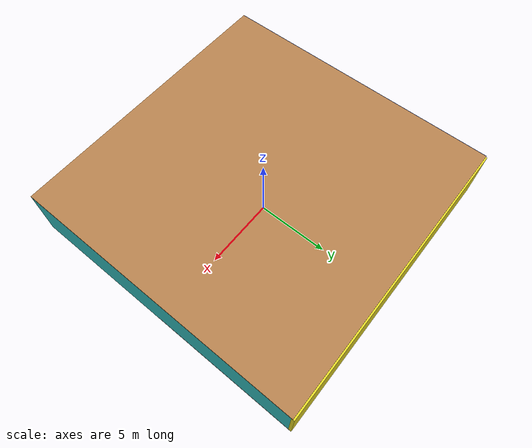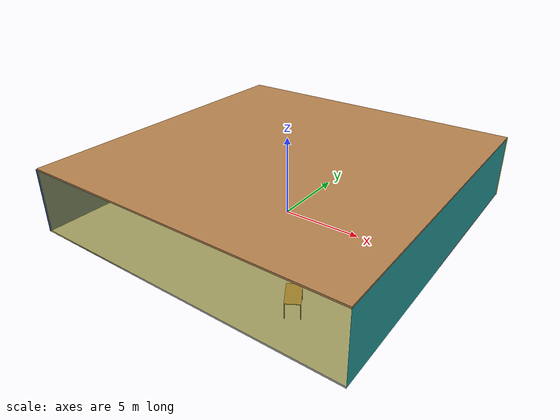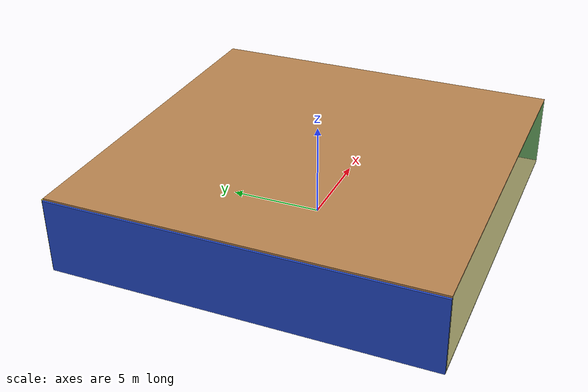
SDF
<sdf version="1.4">
 <world name="default">
  <physics type="ode">
   <max_step_size>0.001</max_step_size>
   <real_time_factor>1</real_time_factor>
   <real_time_update_rate>1000</real_time_update_rate>
   <gravity>0 0 -9.8</gravity>
  </physics>
  <scene><ambient>0.4 0.4 0.4 1</ambient><background>0.7 0.7 0.7 1</background><shadows>1</shadows></scene>
  <model name="Surrounding">
   <static>1</static>
   <link name="Ceiling">
    <collision name="Ceiling_Collision"><geometry><box><size>20 20 0.1</size></box></geometry></collision>
    <visual name="Ceiling_Visual">
     <geometry><box><size>20 20 0.1</size></box></geometry>
     <material>
      <script><uri>file://media/materials/scripts/gazebo.material</uri><name>Gazebo/WoodPallet</name></script>
     </material>
    </visual>
    <pose>0 0 4.05 0 0 0</pose>
   </link>
   <link name="Wall_South">
    <collision name="Wall_South_Collision">
     <geometry><box><size>20 0 4</size></box></geometry>
     <pose>0 0 2 0 -0 0</pose>
    </collision>
    <visual name="Wall_South_Visual">
     <pose>0 0 2 0 -0 0</pose>
     <geometry><box><size>20 0 4</size></box></geometry>
     <material>
      <script>
       <uri>file://media/materials/scripts/gazebo.material</uri>
       <name>Gazebo/YellowTransparent</name>
      </script>
     </material>
    </visual>
    <velocity_decay><linear>0</linear><angular>0</angular></velocity_decay>
    <pose>0 -10 0 0 -0 0</pose>
   </link>
   <link name="Wall_East">
    <collision name="Wall_21_Collision">
     <geometry><box><size>20 0 4</size></box></geometry>
     <pose>0 0 2 0 -0 0</pose>
    </collision>
    <visual name="Wall_21_Visual">
     <pose>0 0 2 0 -0 0</pose>
     <geometry><box><size>20 0 4</size></box></geometry>
     <material>
      <script>
       <uri>file://media/materials/scripts/gazebo.material</uri>
       <name>Gazebo/TurquoiseGlowOutline</name>
      </script>
     </material>
    </visual>
    <velocity_decay><linear>0</linear><angular>0</angular></velocity_decay>
    <pose>10 0 0 0 -0 1.5708</pose>
   </link>
   <link name="Wall_North">
    <collision name="Wall_22_Collision">
     <geometry><box><size>20 0.2 4</size></box></geometry>
     <pose>0 0 2 0 -0 0</pose>
    </collision>
    <visual name="Wall_22_Visual">
     <pose>0 0 2 0 -0 0</pose>
     <geometry><box><size>20 0.2 4</size></box></geometry>
     <material>
      <script><uri>file://media/materials/scripts/gazebo.material</uri><name>Gazebo/YellowGlow</name></script>
     </material>
    </visual>
    <velocity_decay><linear>0</linear><angular>0</angular></velocity_decay>
    <pose>0 10 0 0 -0 0</pose>
   </link>
   <link name="Wall_West">
    <collision name="Wall_23_Collision">
     <geometry><box><size>20 0.2 4</size></box></geometry>
     <pose>0 0 2 0 -0 0</pose>
    </collision>
    <visual name="Wall_23_Visual">
     <pose>0 0 2 0 -0 0</pose>
     <geometry><box><size>20 0.2 4</size></box></geometry>
     <material>
      <script><uri>file://media/materials/scripts/gazebo.material</uri><name>Gazebo/BlueLaser</name></script>
     </material>
    </visual>
    <velocity_decay><linear>0</linear><angular>0</angular></velocity_decay>
    <pose>-10 0 0 0 0 -1.5708</pose>
   </link>
   <link name="Ground_link">
    <collision name="collision">
     <pose>0 0 .05 0 -0 0</pose>
     <geometry><box><size>20 20 0.1</size></box></geometry>
    </collision>
    <visual name="visual">
     <pose>0 0 .05 0 -0 0</pose>
     <geometry><box><size>20 20 0.1</size></box></geometry>
     <material>
      <script><uri>file://media/materials/scripts/gazebo.material</uri><name>Gazebo/Pioneer2Body</name></script>
     </material>
    </visual>
   </link>
   <static>1</static>
  </model>
  <spherical_coordinates>
   <surface_model>EARTH_WGS84</surface_model>
   <latitude_deg>0</latitude_deg>
   <longitude_deg>0</longitude_deg>
   <elevation>0</elevation>
   <heading_deg>0</heading_deg>
  </spherical_coordinates>
  <light name="lightball_0" type="diffuse">
   <diffuse>0.8 0.8 0.8 1</diffuse>
   <specular>0.2 0.2 0.2 1</specular>
   <attenuation>
    <range>100</range>
    <constant>0.7</constant>
    <linear>0.01</linear>
    <quadratic>0.001</quadratic>
   </attenuation>
   <direction>-0.5 0.1 -0.9</direction>
   <pose>6.51169937021 0.702987363576 3.46374214654 0 0 0</pose>
  </light>
  <light name="lightball_1" type="diffuse">
   <diffuse>0.8 0.8 0.8 1</diffuse>
   <specular>0.2 0.2 0.2 1</specular>
   <attenuation>
    <range>100</range>
    <constant>0.7</constant>
    <linear>0.01</linear>
    <quadratic>0.001</quadratic>
   </attenuation>
   <direction>-0.5 0.1 -0.9</direction>
   <pose>-3.43334150465 4.64527159904 3.32948904022 0 0 0</pose>
  </light>
  <light name="lightball_2" type="diffuse">
   <diffuse>0.8 0.8 0.8 1</diffuse>
   <specular>0.2 0.2 0.2 1</specular>
   <attenuation>
    <range>100</range>
    <constant>0.7</constant>
    <linear>0.01</linear>
    <quadratic>0.001</quadratic>
   </attenuation>
   <direction>-0.5 0.1 -0.9</direction>
   <pose>0.191428344823 -7.16214074553 1.18205396518 0 0 0</pose>
  </light>
  <light name="lightball_3" type="diffuse">
   <diffuse>0.8 0.8 0.8 1</diffuse>
   <specular>0.2 0.2 0.2 1</specular>
   <attenuation>
    <range>100</range>
    <constant>0.7</constant>
    <linear>0.01</linear>
    <quadratic>0.001</quadratic>
   </attenuation>
   <direction>-0.5 0.1 -0.9</direction>
   <pose>7.42171710417 -1.31093230499 2.74472780717 0 0 0</pose>
  </light>
  <light name="lightball_4" type="diffuse">
   <diffuse>0.8 0.8 0.8 1</diffuse>
   <specular>0.2 0.2 0.2 1</specular>
   <attenuation>
    <range>100</range>
    <constant>0.7</constant>
    <linear>0.01</linear>
    <quadratic>0.001</quadratic>
   </attenuation>
   <direction>-0.5 0.1 -0.9</direction>
   <pose>-0.191984507157 -6.38575125156 3.546791503 0 0 0</pose>
  </light>
  <light name="lightball_5" type="diffuse">
   <diffuse>0.8 0.8 0.8 1</diffuse>
   <specular>0.2 0.2 0.2 1</specular>
   <attenuation>
    <range>100</range>
    <constant>0.7</constant>
    <linear>0.01</linear>
    <quadratic>0.001</quadratic>
   </attenuation>
   <direction>-0.5 0.1 -0.9</direction>
   <pose>-6.01597719777 2.12676708506 3.32382701666 0 0 0</pose>
  </light>
  <include><uri>model://table</uri><pose>-7.28798666606 -0.943992301844 0 0 0 2.24122018768</pose></include>
  <include>
   <uri>model://robocup_3Dsim_goal</uri>
   <pose>-0.753176152579 3.435663523 0 0 0 0.442145143331</pose>
  </include>
  <include><uri>model://table</uri><pose>5.6590901732 -7.43958719512 0 0 0 2.1155713321</pose></include>
 </world>
</sdf>

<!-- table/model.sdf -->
<sdf version="1.5">
  <model name="table">
    <static>true</static>
    <link name="link">
      <collision name="surface">
        <pose>0 0 1.0 0 0 0</pose>
        <geometry>
          <box>
            <size>1.5 0.8 0.03</size>
          </box>
        </geometry>
        <surface>
          <friction>
            <ode>
              <mu>0.6</mu>
              <mu2>0.6</mu2>
            </ode>
          </friction>
        </surface>
      </collision>
      <visual name="visual1">
        <pose>0 0 1.0 0 0 0</pose>
        <geometry>
          <box>
            <size>1.5 0.8 0.03</size>
          </box>
        </geometry>
        <material>
          <script>
            <uri>model://media/materials/scripts/gazebo.material</uri>
            <name>Gazebo/Wood</name>
          </script>
        </material>
      </visual>
      <collision name="front_left_leg">
        <pose>0.68 0.38 0.5 0 0 0</pose>
        <geometry>
          <cylinder>
            <radius>0.02</radius>
            <length>1.0</length>
          </cylinder>
        </geometry>
      </collision>
      <visual name="front_left_leg">
        <pose>0.68 0.38 0.5 0 0 0</pose>
        <geometry>
          <cylinder>
            <radius>0.02</radius>
            <length>1.0</length>
          </cylinder>
        </geometry>
        <material>
          <script>
            <uri>model://media/materials/scripts/gazebo.material</uri>
            <name>Gazebo/Grey</name>
          </script>
        </material>
      </visual>
      <collision name="front_right_leg">
        <pose>0.68 -0.38 0.5 0 0 0</pose>
        <geometry>
          <cylinder>
            <radius>0.02</radius>
            <length>1.0</length>
          </cylinder>
        </geometry>
      </collision>
      <visual name="front_right_leg">
        <pose>0.68 -0.38 0.5 0 0 0</pose>
        <geometry>
          <cylinder>
            <radius>0.02</radius>
            <length>1.0</length>
          </cylinder>
        </geometry>
        <material>
          <script>
            <uri>model://media/materials/scripts/gazebo.material</uri>
            <name>Gazebo/Grey</name>
          </script>
        </material>
      </visual>
      <collision name="back_right_leg">
        <pose>-0.68 -0.38 0.5 0 0 0</pose>
        <geometry>
          <cylinder>
            <radius>0.02</radius>
            <length>1.0</length>
          </cylinder>
        </geometry>
      </collision>
      <visual name="back_right_leg">
        <pose>-0.68 -0.38 0.5 0 0 0</pose>
        <geometry>
          <cylinder>
            <radius>0.02</radius>
            <length>1.0</length>
          </cylinder>
        </geometry>
        <material>
          <script>
            <uri>model://media/materials/scripts/gazebo.material</uri>
            <name>Gazebo/Grey</name>
          </script>
        </material>
      </visual>
      <collision name="back_left_leg">
        <pose>-0.68 0.38 0.5 0 0 0</pose>
        <geometry>
          <cylinder>
            <radius>0.02</radius>
            <length>1.0</length>
          </cylinder>
        </geometry>
      </collision>
      <visual name="back_left_leg">
        <pose>-0.68 0.38 0.5 0 0 0</pose>
        <geometry>
          <cylinder>
            <radius>0.02</radius>
            <length>1.0</length>
          </cylinder>
        </geometry>
        <material>
          <script>
            <uri>model://media/materials/scripts/gazebo.material</uri>
            <name>Gazebo/Grey</name>
          </script>
        </material>
      </visual>
    </link>
  </model>
</sdf>

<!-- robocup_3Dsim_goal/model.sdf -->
<sdf version="1.5">
  <model name="robocup_3d_goal">
    <static>true</static>
    <link name="left_post">
      <pose>0 1.05 0.45 0 0 0</pose>
      <collision name="collision">
        <geometry>
          <cylinder>
            <radius>0.05</radius>
            <length>0.9</length>
          </cylinder>
        </geometry>
      </collision>
      <visual name="visual">
        <geometry>
          <cylinder>
            <radius>0.05</radius>
            <length>0.9</length>
          </cylinder>
        </geometry>
        <material>
          <script>
            <uri>file://media/materials/scripts/gazebo.material</uri>
            <name>Gazebo/ZincYellow</name>
          </script>
        </material>
      </visual>
    </link>
    <link name="left_support_horiz_lower">
      <pose>0.30 1.05 0.01 0 0 0</pose>
      <collision name="collision">
        <geometry>
          <box>
            <size>0.50 0.02 0.02</size>
          </box>
        </geometry>
      </collision>
      <visual name="visual">
        <geometry>
          <box>
            <size>0.50 0.02 0.02</size>
          </box>
        </geometry>
        <material>
          <script>
            <uri>file://media/materials/scripts/gazebo.material</uri>
            <name>Gazebo/White</name>
          </script>
        </material>
      </visual>
    </link>
    <link name="left_support_horiz_upper">
      <pose>0.30 1.05 0.79 0 0 0</pose>
      <collision name="collision">
        <geometry>
          <box>
            <size>0.50 0.02 0.02</size>
          </box>
        </geometry>
      </collision>
      <visual name="visual">
        <geometry>
          <box>
            <size>0.50 0.02 0.02</size>
          </box>
        </geometry>
        <material>
          <script>
            <uri>file://media/materials/scripts/gazebo.material</uri>
            <name>Gazebo/White</name>
          </script>
        </material>
      </visual>
    </link>
    <link name="left_support_vertical">
      <pose>0.56 1.05 0.4 0 1.5708 0</pose>
      <collision name="collision">
        <geometry>
          <box>
            <size>0.80 0.02 0.02</size>
          </box>
        </geometry>
      </collision>
      <visual name="visual">
        <geometry>
          <box>
            <size>0.80 0.02 0.02</size>
          </box>
        </geometry>
        <material>
          <script>
            <uri>file://media/materials/scripts/gazebo.material</uri>
            <name>Gazebo/White</name>
          </script>
        </material>
      </visual>
    </link>
    <link name="right_support_horiz_lower">
      <pose>0.30 -1.05 0.01 0 0 0</pose>
      <collision name="collision">
        <geometry>
          <box>
            <size>0.50 0.02 0.02</size>
          </box>
        </geometry>
      </collision>
      <visual name="visual">
        <geometry>
          <box>
            <size>0.50 0.02 0.02</size>
          </box>
        </geometry>
        <material>
          <script>
            <uri>file://media/materials/scripts/gazebo.material</uri>
            <name>Gazebo/White</name>
          </script>
        </material>
      </visual>
    </link>
    <link name="right_support_horiz_upper">
      <pose>0.30 -1.05 0.79 0 0 0</pose>
      <collision name="collision">
        <geometry>
          <box>
            <size>0.50 0.02 0.02</size>
          </box>
        </geometry>
      </collision>
      <visual name="visual">
        <geometry>
          <box>
            <size>0.50 0.02 0.02</size>
          </box>
        </geometry>
        <material>
          <script>
            <uri>file://media/materials/scripts/gazebo.material</uri>
            <name>Gazebo/White</name>
          </script>
        </material>
      </visual>
    </link>
    <link name="right_support_vertical">
      <pose>0.56 -1.05 0.4 0 1.5708 0</pose>
      <collision name="collision">
        <geometry>
          <box>
            <size>0.80 0.02 0.02</size>
          </box>
        </geometry>
      </collision>
      <visual name="visual">
        <geometry>
          <box>
            <size>0.80 0.02 0.02</size>
          </box>
        </geometry>
        <material>
          <script>
            <uri>file://media/materials/scripts/gazebo.material</uri>
            <name>Gazebo/White</name>
          </script>
        </material>
      </visual>
    </link>
    <link name="center_support_horiz_lower">
      <pose>0.56 0 0.01 0 1.5708 0</pose>
      <collision name="collision">
        <geometry>
          <box>
            <size>0.02 2.08 0.02</size>
          </box>
        </geometry>
      </collision>
      <visual name="visual">
        <geometry>
          <box>
            <size>0.02 2.08 0.02</size>
          </box>
        </geometry>
        <material>
          <script>
            <uri>file://media/materials/scripts/gazebo.material</uri>
            <name>Gazebo/White</name>
          </script>
        </material>
      </visual>
    </link>
    <link name="center_support_horiz_upper">
      <pose>0.56 0 0.79 0 1.5708 0</pose>
      <collision name="collision">
        <geometry>
          <box>
            <size>0.02 2.08 0.02</size>
          </box>
        </geometry>
      </collision>
      <visual name="visual">
        <geometry>
          <box>
            <size>0.02 2.08 0.02</size>
          </box>
        </geometry>
        <material>
          <script>
            <uri>file://media/materials/scripts/gazebo.material</uri>
            <name>Gazebo/White</name>
          </script>
        </material>
      </visual>
    </link>
    <link name="right_post">
      <pose>0 -1.05 0.45 0 0 0</pose>
      <collision name="collision">
        <geometry>
          <cylinder>
            <radius>0.05</radius>
            <length>0.9</length>
          </cylinder>
        </geometry>
      </collision>
      <visual name="visual">
        <geometry>
          <cylinder>
            <radius>0.05</radius>
            <length>0.9</length>
          </cylinder>
        </geometry>
        <material>
          <script>
            <uri>file://media/materials/scripts/gazebo.material</uri>
            <name>Gazebo/ZincYellow</name>
          </script>
        </material>
      </visual>
    </link>
    <link name="crossbar">
      <pose>0 0 0.85 1.57 1.57 0</pose>
      <collision name="collision">
        <geometry>
          <cylinder>
            <radius>0.05</radius>
            <length>2.0</length>
          </cylinder>
        </geometry>
      </collision>
      <visual name="visual">
        <geometry>
          <cylinder>
            <radius>0.05</radius>
            <length>2.0</length>
          </cylinder>
        </geometry>
        <material>
          <script>
            <uri>file://media/materials/scripts/gazebo.material</uri>
            <name>Gazebo/ZincYellow</name>
          </script>
        </material>
      </visual>
    </link>
    <link name="center_net">
      <pose>0.56 0 0.40 0 0 0</pose>
      <collision name="collision">
        <geometry>
          <box>
            <size>0.01 2.1 0.80</size>
          </box>
        </geometry>
      </collision>
      <visual name="visual">
        <geometry>
          <box>
            <size>0.01 2.1 0.80</size>
          </box>
        </geometry>
        <material>
          <script>
            <uri>model://../model_source/models/robocup09_spl_field/materials/scripts/</uri>
            <uri>model://../model_source/models/robocup09_spl_field/materials/textures/</uri>
            <name>RoboCup/Net</name>
          </script>
        </material>
      </visual>
    </link>
    <link name="left_net">
      <pose>0.30 1.05 0.40 0 0 0</pose>
      <collision name="collision">
        <geometry>
          <box>
            <size>0.50 0.01 0.76</size>
          </box>
        </geometry>
      </collision>
      <visual name="visual">
        <geometry>
          <box>
            <size>0.50 0.01 0.76</size>
          </box>
        </geometry>
        <material>
          <script>
            <uri>model://../model_source/models/robocup09_spl_field/materials/scripts/</uri>
            <uri>model://../model_source/models/robocup09_spl_field/materials/textures/</uri>
            <name>RoboCup/Net</name>
          </script>
        </material>
      </visual>
    </link>
    <link name="right_net">
      <pose>0.30 -1.05 0.40 0 0 0</pose>
      <collision name="collision">
        <geometry>
          <box>
            <size>0.50 0.01 0.76</size>
          </box>
        </geometry>
      </collision>
      <visual name="visual">
        <geometry>
          <box>
            <size>0.50 0.01 0.76</size>
          </box>
        </geometry>
        <material>
          <script>
            <uri>model://../model_source/models/robocup09_spl_field/materials/scripts/</uri>
            <uri>model://../model_source/models/robocup09_spl_field/materials/textures/</uri>
            <name>RoboCup/Net</name>
          </script>
        </material>
      </visual>
    </link>
  </model>
</sdf>
